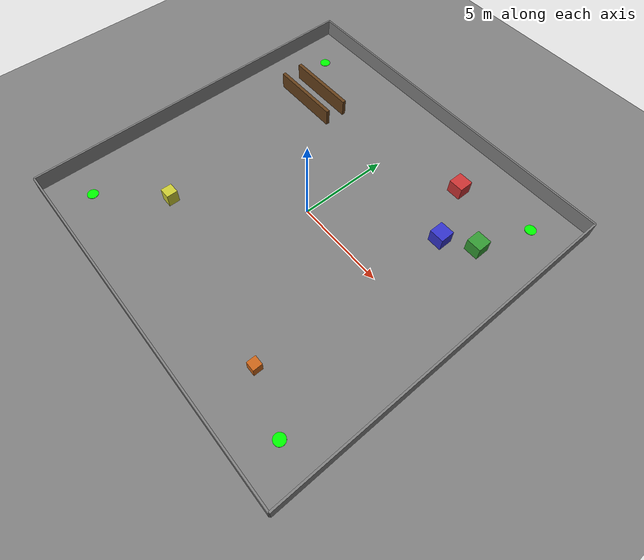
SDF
<?xml version="1.0" ?>
<sdf version="1.8">
  <world name="param_test">

    <!-- Physics -->
    <physics name="1ms" type="ignored">
      <max_step_size>0.001</max_step_size>
      <real_time_factor>1.0</real_time_factor>
    </physics>

    <!-- Plugins -->
    <plugin filename="gz-sim-physics-system" name="gz::sim::systems::Physics"/>
    <plugin filename="gz-sim-user-commands-system" name="gz::sim::systems::UserCommands"/>
    <plugin filename="gz-sim-scene-broadcaster-system" name="gz::sim::systems::SceneBroadcaster"/>
    <plugin filename="gz-sim-sensors-system" name="gz::sim::systems::Sensors">
      <render_engine>ogre2</render_engine>
    </plugin>
    <plugin filename="gz-sim-imu-system" name="gz::sim::systems::Imu"/>
    <plugin filename="gz-sim-contact-system" name="gz::sim::systems::Contact"/>

    <!-- Lighting -->
    <light type="directional" name="sun">
      <cast_shadows>true</cast_shadows>
      <pose>0 0 10 0 0 0</pose>
      <diffuse>0.8 0.8 0.8 1</diffuse>
      <specular>0.2 0.2 0.2 1</specular>
      <direction>-0.5 0.1 -0.9</direction>
    </light>

    <!-- Ground Plane -->
    <model name="ground_plane">
      <static>true</static>
      <link name="link">
        <collision name="collision">
          <geometry>
            <plane>
              <normal>0 0 1</normal>
              <size>100 100</size>
            </plane>
          </geometry>
        </collision>
        <visual name="visual">
          <geometry>
            <plane>
              <normal>0 0 1</normal>
              <size>100 100</size>
            </plane>
          </geometry>
          <material>
            <ambient>0.5 0.5 0.5 1.0</ambient>
            <diffuse>0.5 0.5 0.5 1.0</diffuse>
          </material>
        </visual>
      </link>
    </model>

    <!-- ==================== 외벽 (20x20m 방) ==================== -->
    <model name="wall_north">
      <static>true</static>
      <pose>0 10 0.5 0 0 0</pose>
      <link name="link">
        <collision name="collision">
          <geometry><box><size>20 0.1 1.0</size></box></geometry>
        </collision>
        <visual name="visual">
          <geometry><box><size>20 0.1 1.0</size></box></geometry>
          <material>
            <ambient>0.5 0.5 0.5 1.0</ambient>
            <diffuse>0.5 0.5 0.5 1.0</diffuse>
          </material>
        </visual>
      </link>
    </model>

    <model name="wall_south">
      <static>true</static>
      <pose>0 -10 0.5 0 0 0</pose>
      <link name="link">
        <collision name="collision">
          <geometry><box><size>20 0.1 1.0</size></box></geometry>
        </collision>
        <visual name="visual">
          <geometry><box><size>20 0.1 1.0</size></box></geometry>
          <material>
            <ambient>0.5 0.5 0.5 1.0</ambient>
            <diffuse>0.5 0.5 0.5 1.0</diffuse>
          </material>
        </visual>
      </link>
    </model>

    <model name="wall_east">
      <static>true</static>
      <pose>10 0 0.5 0 0 0</pose>
      <link name="link">
        <collision name="collision">
          <geometry><box><size>0.1 20 1.0</size></box></geometry>
        </collision>
        <visual name="visual">
          <geometry><box><size>0.1 20 1.0</size></box></geometry>
          <material>
            <ambient>0.5 0.5 0.5 1.0</ambient>
            <diffuse>0.5 0.5 0.5 1.0</diffuse>
          </material>
        </visual>
      </link>
    </model>

    <model name="wall_west">
      <static>true</static>
      <pose>-10 0 0.5 0 0 0</pose>
      <link name="link">
        <collision name="collision">
          <geometry><box><size>0.1 20 1.0</size></box></geometry>
        </collision>
        <visual name="visual">
          <geometry><box><size>0.1 20 1.0</size></box></geometry>
          <material>
            <ambient>0.5 0.5 0.5 1.0</ambient>
            <diffuse>0.5 0.5 0.5 1.0</diffuse>
          </material>
        </visual>
      </link>
    </model>

    <!-- ==================== 영역 1: 좁은 통로 (왼쪽 위) ==================== -->
    <!-- 1.2m 폭 통로 - 회피/통과 테스트 -->
    <model name="corridor_wall_1">
      <static>true</static>
      <pose>-6 6 0.5 0 0 0</pose>
      <link name="link">
        <collision name="collision">
          <geometry><box><size>4 0.2 1.0</size></box></geometry>
        </collision>
        <visual name="visual">
          <geometry><box><size>4 0.2 1.0</size></box></geometry>
          <material>
            <ambient>0.4 0.25 0.1 1.0</ambient>
            <diffuse>0.4 0.25 0.1 1.0</diffuse>
          </material>
        </visual>
      </link>
    </model>

    <model name="corridor_wall_2">
      <static>true</static>
      <pose>-6 4.8 0.5 0 0 0</pose>
      <link name="link">
        <collision name="collision">
          <geometry><box><size>4 0.2 1.0</size></box></geometry>
        </collision>
        <visual name="visual">
          <geometry><box><size>4 0.2 1.0</size></box></geometry>
          <material>
            <ambient>0.4 0.25 0.1 1.0</ambient>
            <diffuse>0.4 0.25 0.1 1.0</diffuse>
          </material>
        </visual>
      </link>
    </model>

    <!-- ==================== 영역 2: 장애물 회피 (오른쪽 위) ==================== -->
    <!-- 랜덤 배치된 박스 장애물 -->
    <model name="obstacle_1">
      <static>true</static>
      <pose>4 7 0.4 0 0 0</pose>
      <link name="link">
        <collision name="collision">
          <geometry><box><size>0.8 0.8 0.8</size></box></geometry>
        </collision>
        <visual name="visual">
          <geometry><box><size>0.8 0.8 0.8</size></box></geometry>
          <material>
            <ambient>0.8 0.2 0.2 1.0</ambient>
            <diffuse>0.8 0.2 0.2 1.0</diffuse>
          </material>
        </visual>
      </link>
    </model>

    <model name="obstacle_2">
      <static>true</static>
      <pose>7 5 0.4 0 0 0</pose>
      <link name="link">
        <collision name="collision">
          <geometry><box><size>0.8 0.8 0.8</size></box></geometry>
        </collision>
        <visual name="visual">
          <geometry><box><size>0.8 0.8 0.8</size></box></geometry>
          <material>
            <ambient>0.2 0.6 0.2 1.0</ambient>
            <diffuse>0.2 0.6 0.2 1.0</diffuse>
          </material>
        </visual>
      </link>
    </model>

    <model name="obstacle_3">
      <static>true</static>
      <pose>5.5 4 0.4 0 0 0</pose>
      <link name="link">
        <collision name="collision">
          <geometry><box><size>0.8 0.8 0.8</size></box></geometry>
        </collision>
        <visual name="visual">
          <geometry><box><size>0.8 0.8 0.8</size></box></geometry>
          <material>
            <ambient>0.2 0.2 0.8 1.0</ambient>
            <diffuse>0.2 0.2 0.8 1.0</diffuse>
          </material>
        </visual>
      </link>
    </model>

    <!-- ==================== 영역 3: 열린 공간 (가운데) ==================== -->
    <!-- 로봇 스폰 위치 (0, 0) 주변 - 속도 테스트 가능 -->

    <!-- ==================== 영역 4: 움직이는 장애물 (아래쪽) ==================== -->
    <!-- 느린 이동 장애물 (0.3 m/s) - 중력/마찰 제거 -->
    <model name="moving_slow">
      <static>false</static>
      <pose>-5 -5 0.5 0 0 0</pose>
      <link name="chassis">
        <gravity>false</gravity>
        <collision name="collision">
          <geometry><box><size>0.6 0.6 0.8</size></box></geometry>
          <surface>
            <friction><ode><mu>0</mu><mu2>0</mu2></ode></friction>
          </surface>
        </collision>
        <visual name="visual">
          <geometry><box><size>0.6 0.6 0.8</size></box></geometry>
          <material>
            <ambient>0.8 0.8 0.2 1.0</ambient>
            <diffuse>0.8 0.8 0.2 1.0</diffuse>
          </material>
        </visual>
        <inertial>
          <mass>1.0</mass>
          <inertia>
            <ixx>0.1</ixx><iyy>0.1</iyy><izz>0.1</izz>
          </inertia>
        </inertial>
      </link>
      <plugin filename="gz-sim-trajectory-follower-system" name="gz::sim::systems::TrajectoryFollower">
        <link_name>chassis</link_name>
        <force>100</force>
        <torque>50</torque>
        <loop>true</loop>
        <waypoint>
          <time>0</time>
          <pose>-5 -5 0.5 0 0 0</pose>
        </waypoint>
        <waypoint>
          <time>33</time>
          <pose>5 -5 0.5 0 0 0</pose>
        </waypoint>
        <waypoint>
          <time>66</time>
          <pose>-5 -5 0.5 0 0 0</pose>
        </waypoint>
      </plugin>
    </model>

    <!-- 빠른 이동 장애물 (0.8 m/s) - 중력/마찰 제거 -->
    <model name="moving_fast">
      <static>false</static>
      <pose>5 -7 0.4 0 0 0</pose>
      <link name="chassis">
        <gravity>false</gravity>
        <collision name="collision">
          <geometry><box><size>0.5 0.5 0.6</size></box></geometry>
          <surface>
            <friction><ode><mu>0</mu><mu2>0</mu2></ode></friction>
          </surface>
        </collision>
        <visual name="visual">
          <geometry><box><size>0.5 0.5 0.6</size></box></geometry>
          <material>
            <ambient>0.8 0.4 0.1 1.0</ambient>
            <diffuse>0.8 0.4 0.1 1.0</diffuse>
          </material>
        </visual>
        <inertial>
          <mass>1.0</mass>
          <inertia>
            <ixx>0.05</ixx><iyy>0.05</iyy><izz>0.05</izz>
          </inertia>
        </inertial>
      </link>
      <plugin filename="gz-sim-trajectory-follower-system" name="gz::sim::systems::TrajectoryFollower">
        <link_name>chassis</link_name>
        <force>100</force>
        <torque>50</torque>
        <loop>true</loop>
        <waypoint>
          <time>0</time>
          <pose>5 -7 0.4 0 0 0</pose>
        </waypoint>
        <waypoint>
          <time>12</time>
          <pose>-5 -7 0.4 0 0 0</pose>
        </waypoint>
        <waypoint>
          <time>24</time>
          <pose>5 -7 0.4 0 0 0</pose>
        </waypoint>
      </plugin>
    </model>

    <!-- ==================== 영역 5: 목표 마커 (각 코너) ==================== -->
    <!-- 목표 지점 시각화용 (충돌 없음) -->
    <model name="goal_marker_1">
      <static>true</static>
      <pose>-8 8 0.01 0 0 0</pose>
      <link name="link">
        <visual name="visual">
          <geometry><cylinder><radius>0.3</radius><length>0.02</length></cylinder></geometry>
          <material>
            <ambient>0.0 1.0 0.0 1.0</ambient>
            <diffuse>0.0 1.0 0.0 1.0</diffuse>
          </material>
        </visual>
      </link>
    </model>

    <model name="goal_marker_2">
      <static>true</static>
      <pose>8 8 0.01 0 0 0</pose>
      <link name="link">
        <visual name="visual">
          <geometry><cylinder><radius>0.3</radius><length>0.02</length></cylinder></geometry>
          <material>
            <ambient>0.0 1.0 0.0 1.0</ambient>
            <diffuse>0.0 1.0 0.0 1.0</diffuse>
          </material>
        </visual>
      </link>
    </model>

    <model name="goal_marker_3">
      <static>true</static>
      <pose>-8 -8 0.01 0 0 0</pose>
      <link name="link">
        <visual name="visual">
          <geometry><cylinder><radius>0.3</radius><length>0.02</length></cylinder></geometry>
          <material>
            <ambient>0.0 1.0 0.0 1.0</ambient>
            <diffuse>0.0 1.0 0.0 1.0</diffuse>
          </material>
        </visual>
      </link>
    </model>

    <model name="goal_marker_4">
      <static>true</static>
      <pose>8 -8 0.01 0 0 0</pose>
      <link name="link">
        <visual name="visual">
          <geometry><cylinder><radius>0.3</radius><length>0.02</length></cylinder></geometry>
          <material>
            <ambient>0.0 1.0 0.0 1.0</ambient>
            <diffuse>0.0 1.0 0.0 1.0</diffuse>
          </material>
        </visual>
      </link>
    </model>

  </world>
</sdf>
